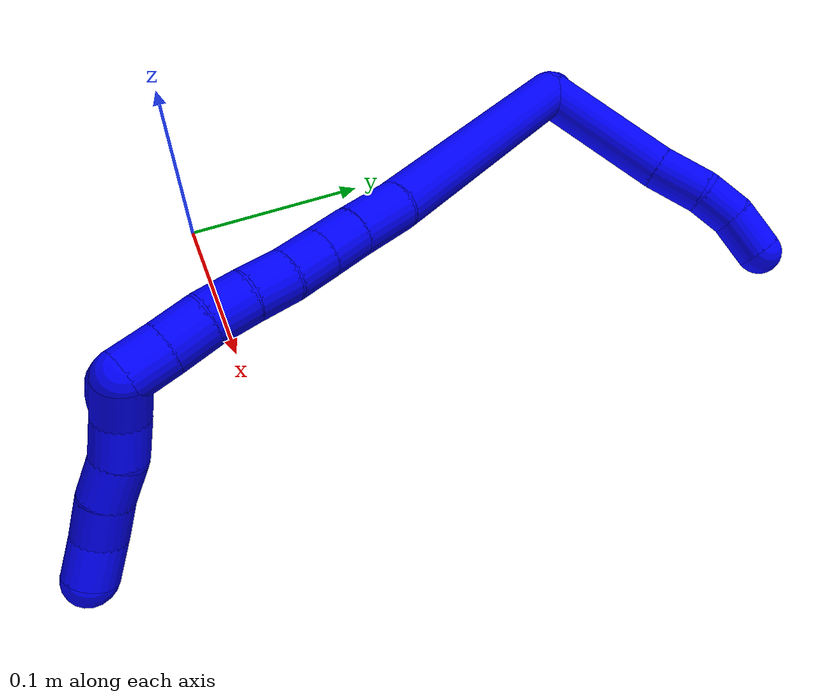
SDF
<sdf version="1.7">
 <world name="default">
  <model name="1">
   <static>0</static>
   <link name="1">
    <collision name="collision-cylinder-e_1_2_8">
     <pose>0.028458 0.024304 0.002439 -1.47079 0.861506 -0.787988</pose>
     <geometry><cylinder><radius>0.0125</radius><length>0.075006</length></cylinder></geometry>
     <surface>
      <friction><ode><mu>1.16</mu><mu2>1.16</mu2><slip1>0</slip1><slip2>0</slip2></ode></friction>
      <contact><ode><kp>1e+06</kp><kd>1</kd><max_vel>0</max_vel><min_depth>0.001</min_depth></ode></contact>
     </surface>
    </collision>
    <visual name="visual-cylinder-e_1_2_8">
     <pose>0.028458 0.024304 0.002439 -1.47079 0.861506 -0.787988</pose>
     <geometry><cylinder><radius>0.0125</radius><length>0.075006</length></cylinder></geometry>
     <material><ambient>0 0 1 1</ambient></material>
    </visual>
    <collision name="collision-cylinder-e_2_8_9">
     <pose>0.067397 0.05813 0.007299 -1.32172 0.817628 -0.649778</pose>
     <geometry><cylinder><radius>0.0125</radius><length>0.028733</length></cylinder></geometry>
     <surface>
      <friction><ode><mu>1.16</mu><mu2>1.16</mu2><slip1>0</slip1><slip2>0</slip2></ode></friction>
      <contact><ode><kp>1e+06</kp><kd>1</kd><max_vel>0</max_vel><min_depth>0.001</min_depth></ode></contact>
     </surface>
    </collision>
    <visual name="visual-cylinder-e_2_8_9">
     <pose>0.067397 0.05813 0.007299 -1.32172 0.817628 -0.649778</pose>
     <geometry><cylinder><radius>0.0125</radius><length>0.028733</length></cylinder></geometry>
     <material><ambient>0 0 1 1</ambient></material>
    </visual>
    <collision name="collision-cylinder-e_3_9_10">
     <pose>0.085677 0.074943 0.008899 -1.68322 0.815945 -0.901156</pose>
     <geometry><cylinder><radius>0.0125</radius><length>0.021414</length></cylinder></geometry>
     <surface>
      <friction><ode><mu>1.16</mu><mu2>1.16</mu2><slip1>0</slip1><slip2>0</slip2></ode></friction>
      <contact><ode><kp>1e+06</kp><kd>1</kd><max_vel>0</max_vel><min_depth>0.001</min_depth></ode></contact>
     </surface>
    </collision>
    <visual name="visual-cylinder-e_3_9_10">
     <pose>0.085677 0.074943 0.008899 -1.68322 0.815945 -0.901156</pose>
     <geometry><cylinder><radius>0.0125</radius><length>0.021414</length></cylinder></geometry>
     <material><ambient>0 0 1 1</ambient></material>
    </visual>
    <collision name="collision-cylinder-e_4_10_6">
     <pose>0.104417 0.087758 0.006051 -1.92195 1.07731 -1.41521</pose>
     <geometry><cylinder><radius>0.0125</radius><length>0.024847</length></cylinder></geometry>
     <surface>
      <friction><ode><mu>1.16</mu><mu2>1.16</mu2><slip1>0</slip1><slip2>0</slip2></ode></friction>
      <contact><ode><kp>1e+06</kp><kd>1</kd><max_vel>0</max_vel><min_depth>0.001</min_depth></ode></contact>
     </surface>
    </collision>
    <visual name="visual-cylinder-e_4_10_6">
     <pose>0.104417 0.087758 0.006051 -1.92195 1.07731 -1.41521</pose>
     <geometry><cylinder><radius>0.0125</radius><length>0.024847</length></cylinder></geometry>
     <material><ambient>0 0 1 1</ambient></material>
    </visual>
    <collision name="collision-cylinder-e_1_2_11">
     <pose>-0.004842 0.004885 -0.007259 -2.54933 -0.505404 1.40473</pose>
     <geometry><cylinder><radius>0.0125</radius><length>0.02</length></cylinder></geometry>
     <surface>
      <friction><ode><mu>1.16</mu><mu2>1.16</mu2><slip1>0</slip1><slip2>0</slip2></ode></friction>
      <contact><ode><kp>1e+06</kp><kd>1</kd><max_vel>0</max_vel><min_depth>0.001</min_depth></ode></contact>
     </surface>
    </collision>
    <visual name="visual-cylinder-e_1_2_11">
     <pose>-0.004842 0.004885 -0.007259 -2.54933 -0.505404 1.40473</pose>
     <geometry><cylinder><radius>0.0125</radius><length>0.02</length></cylinder></geometry>
     <material><ambient>0 0 1 1</ambient></material>
    </visual>
    <collision name="collision-cylinder-e_2_11_12">
     <pose>-0.014441 0.015301 -0.021357 -2.46135 -0.495861 1.24188</pose>
     <geometry><cylinder><radius>0.0125</radius><length>0.02</length></cylinder></geometry>
     <surface>
      <friction><ode><mu>1.16</mu><mu2>1.16</mu2><slip1>0</slip1><slip2>0</slip2></ode></friction>
      <contact><ode><kp>1e+06</kp><kd>1</kd><max_vel>0</max_vel><min_depth>0.001</min_depth></ode></contact>
     </surface>
    </collision>
    <visual name="visual-cylinder-e_2_11_12">
     <pose>-0.014441 0.015301 -0.021357 -2.46135 -0.495861 1.24188</pose>
     <geometry><cylinder><radius>0.0125</radius><length>0.02</length></cylinder></geometry>
     <material><ambient>0 0 1 1</ambient></material>
    </visual>
    <collision name="collision-cylinder-e_3_12_13">
     <pose>-0.024557 0.026415 -0.034531 -2.41946 -0.565481 1.31155</pose>
     <geometry><cylinder><radius>0.0125</radius><length>0.02</length></cylinder></geometry>
     <surface>
      <friction><ode><mu>1.16</mu><mu2>1.16</mu2><slip1>0</slip1><slip2>0</slip2></ode></friction>
      <contact><ode><kp>1e+06</kp><kd>1</kd><max_vel>0</max_vel><min_depth>0.001</min_depth></ode></contact>
     </surface>
    </collision>
    <visual name="visual-cylinder-e_3_12_13">
     <pose>-0.024557 0.026415 -0.034531 -2.41946 -0.565481 1.31155</pose>
     <geometry><cylinder><radius>0.0125</radius><length>0.02</length></cylinder></geometry>
     <material><ambient>0 0 1 1</ambient></material>
    </visual>
    <collision name="collision-cylinder-e_4_13_14">
     <pose>-0.035217 0.037587 -0.047241 -2.42149 -0.558747 1.30231</pose>
     <geometry><cylinder><radius>0.0125</radius><length>0.02</length></cylinder></geometry>
     <surface>
      <friction><ode><mu>1.16</mu><mu2>1.16</mu2><slip1>0</slip1><slip2>0</slip2></ode></friction>
      <contact><ode><kp>1e+06</kp><kd>1</kd><max_vel>0</max_vel><min_depth>0.001</min_depth></ode></contact>
     </surface>
    </collision>
    <visual name="visual-cylinder-e_4_13_14">
     <pose>-0.035217 0.037587 -0.047241 -2.42149 -0.558747 1.30231</pose>
     <geometry><cylinder><radius>0.0125</radius><length>0.02</length></cylinder></geometry>
     <material><ambient>0 0 1 1</ambient></material>
    </visual>
    <collision name="collision-cylinder-e_5_14_5">
     <pose>-0.046979 0.047557 -0.059866 -2.53062 -0.70247 1.72033</pose>
     <geometry><cylinder><radius>0.0125</radius><length>0.02</length></cylinder></geometry>
     <surface>
      <friction><ode><mu>1.16</mu><mu2>1.16</mu2><slip1>0</slip1><slip2>0</slip2></ode></friction>
      <contact><ode><kp>1e+06</kp><kd>1</kd><max_vel>0</max_vel><min_depth>0.001</min_depth></ode></contact>
     </surface>
    </collision>
    <visual name="visual-cylinder-e_5_14_5">
     <pose>-0.046979 0.047557 -0.059866 -2.53062 -0.70247 1.72033</pose>
     <geometry><cylinder><radius>0.0125</radius><length>0.02</length></cylinder></geometry>
     <material><ambient>0 0 1 1</ambient></material>
    </visual>
    <collision name="collision-cylinder-e_1_2_15">
     <pose>0.041423 -0.060941 0.011304 1.38739 0.58915 0.494284</pose>
     <geometry><cylinder><radius>0.0125</radius><length>0.149096</length></cylinder></geometry>
     <surface>
      <friction><ode><mu>1.16</mu><mu2>1.16</mu2><slip1>0</slip1><slip2>0</slip2></ode></friction>
      <contact><ode><kp>1e+06</kp><kd>1</kd><max_vel>0</max_vel><min_depth>0.001</min_depth></ode></contact>
     </surface>
    </collision>
    <visual name="visual-cylinder-e_1_2_15">
     <pose>0.041423 -0.060941 0.011304 1.38739 0.58915 0.494284</pose>
     <geometry><cylinder><radius>0.0125</radius><length>0.149096</length></cylinder></geometry>
     <material><ambient>0 0 1 1</ambient></material>
    </visual>
    <collision name="collision-cylinder-e_2_15_16">
     <pose>0.089953 -0.134908 0.023692 1.48777 0.497966 0.459687</pose>
     <geometry><cylinder><radius>0.0125</radius><length>0.029757</length></cylinder></geometry>
     <surface>
      <friction><ode><mu>1.16</mu><mu2>1.16</mu2><slip1>0</slip1><slip2>0</slip2></ode></friction>
      <contact><ode><kp>1e+06</kp><kd>1</kd><max_vel>0</max_vel><min_depth>0.001</min_depth></ode></contact>
     </surface>
    </collision>
    <visual name="visual-cylinder-e_2_15_16">
     <pose>0.089953 -0.134908 0.023692 1.48777 0.497966 0.459687</pose>
     <geometry><cylinder><radius>0.0125</radius><length>0.029757</length></cylinder></geometry>
     <material><ambient>0 0 1 1</ambient></material>
    </visual>
    <collision name="collision-cylinder-e_3_16_17">
     <pose>0.10217 -0.15677 0.025221 1.52041 0.523887 0.499214</pose>
     <geometry><cylinder><radius>0.0125</radius><length>0.020432</length></cylinder></geometry>
     <surface>
      <friction><ode><mu>1.16</mu><mu2>1.16</mu2><slip1>0</slip1><slip2>0</slip2></ode></friction>
      <contact><ode><kp>1e+06</kp><kd>1</kd><max_vel>0</max_vel><min_depth>0.001</min_depth></ode></contact>
     </surface>
    </collision>
    <visual name="visual-cylinder-e_3_16_17">
     <pose>0.10217 -0.15677 0.025221 1.52041 0.523887 0.499214</pose>
     <geometry><cylinder><radius>0.0125</radius><length>0.020432</length></cylinder></geometry>
     <material><ambient>0 0 1 1</ambient></material>
    </visual>
    <collision name="collision-cylinder-e_4_17_18">
     <pose>0.112296 -0.174375 0.026272 1.50189 0.518498 0.485331</pose>
     <geometry><cylinder><radius>0.0125</radius><length>0.020244</length></cylinder></geometry>
     <surface>
      <friction><ode><mu>1.16</mu><mu2>1.16</mu2><slip1>0</slip1><slip2>0</slip2></ode></friction>
      <contact><ode><kp>1e+06</kp><kd>1</kd><max_vel>0</max_vel><min_depth>0.001</min_depth></ode></contact>
     </surface>
    </collision>
    <visual name="visual-cylinder-e_4_17_18">
     <pose>0.112296 -0.174375 0.026272 1.50189 0.518498 0.485331</pose>
     <geometry><cylinder><radius>0.0125</radius><length>0.020244</length></cylinder></geometry>
     <material><ambient>0 0 1 1</ambient></material>
    </visual>
    <collision name="collision-cylinder-e_5_18_19">
     <pose>0.121441 -0.192415 0.027072 1.54985 0.41888 0.41044</pose>
     <geometry><cylinder><radius>0.0125</radius><length>0.020299</length></cylinder></geometry>
     <surface>
      <friction><ode><mu>1.16</mu><mu2>1.16</mu2><slip1>0</slip1><slip2>0</slip2></ode></friction>
      <contact><ode><kp>1e+06</kp><kd>1</kd><max_vel>0</max_vel><min_depth>0.001</min_depth></ode></contact>
     </surface>
    </collision>
    <visual name="visual-cylinder-e_5_18_19">
     <pose>0.121441 -0.192415 0.027072 1.54985 0.41888 0.41044</pose>
     <geometry><cylinder><radius>0.0125</radius><length>0.020299</length></cylinder></geometry>
     <material><ambient>0 0 1 1</ambient></material>
    </visual>
    <collision name="collision-cylinder-e_6_19_20">
     <pose>0.129607 -0.21087 0.026366 1.66853 0.412491 0.453535</pose>
     <geometry><cylinder><radius>0.0125</radius><length>0.020147</length></cylinder></geometry>
     <surface>
      <friction><ode><mu>1.16</mu><mu2>1.16</mu2><slip1>0</slip1><slip2>0</slip2></ode></friction>
      <contact><ode><kp>1e+06</kp><kd>1</kd><max_vel>0</max_vel><min_depth>0.001</min_depth></ode></contact>
     </surface>
    </collision>
    <visual name="visual-cylinder-e_6_19_20">
     <pose>0.129607 -0.21087 0.026366 1.66853 0.412491 0.453535</pose>
     <geometry><cylinder><radius>0.0125</radius><length>0.020147</length></cylinder></geometry>
     <material><ambient>0 0 1 1</ambient></material>
    </visual>
    <collision name="collision-cylinder-e_7_20_21">
     <pose>0.1383 -0.228734 0.023683 1.77326 0.483682 0.587401</pose>
     <geometry><cylinder><radius>0.0125</radius><length>0.020018</length></cylinder></geometry>
     <surface>
      <friction><ode><mu>1.16</mu><mu2>1.16</mu2><slip1>0</slip1><slip2>0</slip2></ode></friction>
      <contact><ode><kp>1e+06</kp><kd>1</kd><max_vel>0</max_vel><min_depth>0.001</min_depth></ode></contact>
     </surface>
    </collision>
    <visual name="visual-cylinder-e_7_20_21">
     <pose>0.1383 -0.228734 0.023683 1.77326 0.483682 0.587401</pose>
     <geometry><cylinder><radius>0.0125</radius><length>0.020018</length></cylinder></geometry>
     <material><ambient>0 0 1 1</ambient></material>
    </visual>
    <collision name="collision-cylinder-e_8_21_1">
     <pose>0.147543 -0.246217 0.020665 1.71034 0.47649 0.544815</pose>
     <geometry><cylinder><radius>0.0125</radius><length>0.020007</length></cylinder></geometry>
     <surface>
      <friction><ode><mu>1.16</mu><mu2>1.16</mu2><slip1>0</slip1><slip2>0</slip2></ode></friction>
      <contact><ode><kp>1e+06</kp><kd>1</kd><max_vel>0</max_vel><min_depth>0.001</min_depth></ode></contact>
     </surface>
    </collision>
    <visual name="visual-cylinder-e_8_21_1">
     <pose>0.147543 -0.246217 0.020665 1.71034 0.47649 0.544815</pose>
     <geometry><cylinder><radius>0.0125</radius><length>0.020007</length></cylinder></geometry>
     <material><ambient>0 0 1 1</ambient></material>
    </visual>
    <collision name="collision-cylinder-e_1_1_22">
     <pose>0.148992 -0.255071 0.009934 3.13623 -0.319368 -3.10829</pose>
     <geometry><cylinder><radius>0.0125</radius><length>0.02</length></cylinder></geometry>
     <surface>
      <friction><ode><mu>1.16</mu><mu2>1.16</mu2><slip1>0</slip1><slip2>0</slip2></ode></friction>
      <contact><ode><kp>1e+06</kp><kd>1</kd><max_vel>0</max_vel><min_depth>0.001</min_depth></ode></contact>
     </surface>
    </collision>
    <visual name="visual-cylinder-e_1_1_22">
     <pose>0.148992 -0.255071 0.009934 3.13623 -0.319368 -3.10829</pose>
     <geometry><cylinder><radius>0.0125</radius><length>0.02</length></cylinder></geometry>
     <material><ambient>0 0 1 1</ambient></material>
    </visual>
    <collision name="collision-cylinder-e_2_22_23">
     <pose>0.14347 -0.254562 -0.009256 -3.08399 -0.240563 2.67358</pose>
     <geometry><cylinder><radius>0.0125</radius><length>0.02</length></cylinder></geometry>
     <surface>
      <friction><ode><mu>1.16</mu><mu2>1.16</mu2><slip1>0</slip1><slip2>0</slip2></ode></friction>
      <contact><ode><kp>1e+06</kp><kd>1</kd><max_vel>0</max_vel><min_depth>0.001</min_depth></ode></contact>
     </surface>
    </collision>
    <visual name="visual-cylinder-e_2_22_23">
     <pose>0.14347 -0.254562 -0.009256 -3.08399 -0.240563 2.67358</pose>
     <geometry><cylinder><radius>0.0125</radius><length>0.02</length></cylinder></geometry>
     <material><ambient>0 0 1 1</ambient></material>
    </visual>
    <collision name="collision-cylinder-e_3_23_24">
     <pose>0.139015 -0.253176 -0.0287 -3.05695 -0.208754 2.37332</pose>
     <geometry><cylinder><radius>0.0125</radius><length>0.02</length></cylinder></geometry>
     <surface>
      <friction><ode><mu>1.16</mu><mu2>1.16</mu2><slip1>0</slip1><slip2>0</slip2></ode></friction>
      <contact><ode><kp>1e+06</kp><kd>1</kd><max_vel>0</max_vel><min_depth>0.001</min_depth></ode></contact>
     </surface>
    </collision>
    <visual name="visual-cylinder-e_3_23_24">
     <pose>0.139015 -0.253176 -0.0287 -3.05695 -0.208754 2.37332</pose>
     <geometry><cylinder><radius>0.0125</radius><length>0.02</length></cylinder></geometry>
     <material><ambient>0 0 1 1</ambient></material>
    </visual>
    <collision name="collision-cylinder-e_4_24_25">
     <pose>0.134628 -0.250331 -0.047964 -2.9326 -0.23358 1.68269</pose>
     <geometry><cylinder><radius>0.0125</radius><length>0.02</length></cylinder></geometry>
     <surface>
      <friction><ode><mu>1.16</mu><mu2>1.16</mu2><slip1>0</slip1><slip2>0</slip2></ode></friction>
      <contact><ode><kp>1e+06</kp><kd>1</kd><max_vel>0</max_vel><min_depth>0.001</min_depth></ode></contact>
     </surface>
    </collision>
    <visual name="visual-cylinder-e_4_24_25">
     <pose>0.134628 -0.250331 -0.047964 -2.9326 -0.23358 1.68269</pose>
     <geometry><cylinder><radius>0.0125</radius><length>0.02</length></cylinder></geometry>
     <material><ambient>0 0 1 1</ambient></material>
    </visual>
    <collision name="collision-cylinder-e_5_25_4">
     <pose>0.131906 -0.246846 -0.067364 -2.99431 -0.040746 0.538925</pose>
     <geometry><cylinder><radius>0.0125</radius><length>0.02</length></cylinder></geometry>
     <surface>
      <friction><ode><mu>1.16</mu><mu2>1.16</mu2><slip1>0</slip1><slip2>0</slip2></ode></friction>
      <contact><ode><kp>1e+06</kp><kd>1</kd><max_vel>0</max_vel><min_depth>0.001</min_depth></ode></contact>
     </surface>
    </collision>
    <visual name="visual-cylinder-e_5_25_4">
     <pose>0.131906 -0.246846 -0.067364 -2.99431 -0.040746 0.538925</pose>
     <geometry><cylinder><radius>0.0125</radius><length>0.02</length></cylinder></geometry>
     <material><ambient>0 0 1 1</ambient></material>
    </visual>
    <collision name="collision-cylinder-e_1_1_26">
     <pose>0.156499 -0.255158 0.010434 3.12622 0.452001 3.07475</pose>
     <geometry><cylinder><radius>0.0125</radius><length>0.02</length></cylinder></geometry>
     <surface>
      <friction><ode><mu>1.16</mu><mu2>1.16</mu2><slip1>0</slip1><slip2>0</slip2></ode></friction>
      <contact><ode><kp>1e+06</kp><kd>1</kd><max_vel>0</max_vel><min_depth>0.001</min_depth></ode></contact>
     </surface>
    </collision>
    <visual name="visual-cylinder-e_1_1_26">
     <pose>0.156499 -0.255158 0.010434 3.12622 0.452001 3.07475</pose>
     <geometry><cylinder><radius>0.0125</radius><length>0.02</length></cylinder></geometry>
     <material><ambient>0 0 1 1</ambient></material>
    </visual>
    <collision name="collision-cylinder-e_2_26_27">
     <pose>0.166991 -0.255999 -0.006435 3.05256 0.659137 2.88259</pose>
     <geometry><cylinder><radius>0.0125</radius><length>0.02</length></cylinder></geometry>
     <surface>
      <friction><ode><mu>1.16</mu><mu2>1.16</mu2><slip1>0</slip1><slip2>0</slip2></ode></friction>
      <contact><ode><kp>1e+06</kp><kd>1</kd><max_vel>0</max_vel><min_depth>0.001</min_depth></ode></contact>
     </surface>
    </collision>
    <visual name="visual-cylinder-e_2_26_27">
     <pose>0.166991 -0.255999 -0.006435 3.05256 0.659137 2.88259</pose>
     <geometry><cylinder><radius>0.0125</radius><length>0.02</length></cylinder></geometry>
     <material><ambient>0 0 1 1</ambient></material>
    </visual>
    <collision name="collision-cylinder-e_3_27_28">
     <pose>0.178471 -0.259549 -0.022259 2.79773 0.56523 2.06374</pose>
     <geometry><cylinder><radius>0.0125</radius><length>0.02</length></cylinder></geometry>
     <surface>
      <friction><ode><mu>1.16</mu><mu2>1.16</mu2><slip1>0</slip1><slip2>0</slip2></ode></friction>
      <contact><ode><kp>1e+06</kp><kd>1</kd><max_vel>0</max_vel><min_depth>0.001</min_depth></ode></contact>
     </surface>
    </collision>
    <visual name="visual-cylinder-e_3_27_28">
     <pose>0.178471 -0.259549 -0.022259 2.79773 0.56523 2.06374</pose>
     <geometry><cylinder><radius>0.0125</radius><length>0.02</length></cylinder></geometry>
     <material><ambient>0 0 1 1</ambient></material>
    </visual>
    <collision name="collision-cylinder-e_4_28_29">
     <pose>0.189469 -0.264049 -0.038299 2.94004 0.599402 2.50908</pose>
     <geometry><cylinder><radius>0.0125</radius><length>0.02</length></cylinder></geometry>
     <surface>
      <friction><ode><mu>1.16</mu><mu2>1.16</mu2><slip1>0</slip1><slip2>0</slip2></ode></friction>
      <contact><ode><kp>1e+06</kp><kd>1</kd><max_vel>0</max_vel><min_depth>0.001</min_depth></ode></contact>
     </surface>
    </collision>
    <visual name="visual-cylinder-e_4_28_29">
     <pose>0.189469 -0.264049 -0.038299 2.94004 0.599402 2.50908</pose>
     <geometry><cylinder><radius>0.0125</radius><length>0.02</length></cylinder></geometry>
     <material><ambient>0 0 1 1</ambient></material>
    </visual>
    <collision name="collision-cylinder-e_5_29_3">
     <pose>0.202034 -0.268089 -0.053198 2.80445 0.764738 2.34094</pose>
     <geometry><cylinder><radius>0.0125</radius><length>0.02</length></cylinder></geometry>
     <surface>
      <friction><ode><mu>1.16</mu><mu2>1.16</mu2><slip1>0</slip1><slip2>0</slip2></ode></friction>
      <contact><ode><kp>1e+06</kp><kd>1</kd><max_vel>0</max_vel><min_depth>0.001</min_depth></ode></contact>
     </surface>
    </collision>
    <visual name="visual-cylinder-e_5_29_3">
     <pose>0.202034 -0.268089 -0.053198 2.80445 0.764738 2.34094</pose>
     <geometry><cylinder><radius>0.0125</radius><length>0.02</length></cylinder></geometry>
     <material><ambient>0 0 1 1</ambient></material>
    </visual>
    <collision name="collision-sphere-3">
     <pose>0.208958 -0.270475 -0.060007 0 -0 0</pose>
     <geometry><sphere><radius>0.0125</radius></sphere></geometry>
     <surface>
      <friction><ode><mu>1.16</mu><mu2>1.16</mu2><slip1>0</slip1><slip2>0</slip2></ode></friction>
      <contact><ode><kp>1e+06</kp><kd>1</kd><max_vel>0</max_vel><min_depth>0.001</min_depth></ode></contact>
     </surface>
    </collision>
    <visual name="visual-sphere-3">
     <pose>0.208958 -0.270475 -0.060007 0 -0 0</pose>
     <geometry><sphere><radius>0.0125</radius></sphere></geometry>
     <material><ambient>0 0 1 1</ambient></material>
    </visual>
    <collision name="collision-sphere-29">
     <pose>0.195111 -0.265702 -0.046388 0 -0 0</pose>
     <geometry><sphere><radius>0.0125</radius></sphere></geometry>
     <surface>
      <friction><ode><mu>1.16</mu><mu2>1.16</mu2><slip1>0</slip1><slip2>0</slip2></ode></friction>
      <contact><ode><kp>1e+06</kp><kd>1</kd><max_vel>0</max_vel><min_depth>0.001</min_depth></ode></contact>
     </surface>
    </collision>
    <visual name="visual-sphere-29">
     <pose>0.195111 -0.265702 -0.046388 0 -0 0</pose>
     <geometry><sphere><radius>0.0125</radius></sphere></geometry>
     <material><ambient>0 0 1 1</ambient></material>
    </visual>
    <collision name="collision-sphere-28">
     <pose>0.183828 -0.262396 -0.030209 0 -0 0</pose>
     <geometry><sphere><radius>0.0125</radius></sphere></geometry>
     <surface>
      <friction><ode><mu>1.16</mu><mu2>1.16</mu2><slip1>0</slip1><slip2>0</slip2></ode></friction>
      <contact><ode><kp>1e+06</kp><kd>1</kd><max_vel>0</max_vel><min_depth>0.001</min_depth></ode></contact>
     </surface>
    </collision>
    <visual name="visual-sphere-28">
     <pose>0.183828 -0.262396 -0.030209 0 -0 0</pose>
     <geometry><sphere><radius>0.0125</radius></sphere></geometry>
     <material><ambient>0 0 1 1</ambient></material>
    </visual>
    <collision name="collision-sphere-27">
     <pose>0.173115 -0.256702 -0.014309 0 -0 0</pose>
     <geometry><sphere><radius>0.0125</radius></sphere></geometry>
     <surface>
      <friction><ode><mu>1.16</mu><mu2>1.16</mu2><slip1>0</slip1><slip2>0</slip2></ode></friction>
      <contact><ode><kp>1e+06</kp><kd>1</kd><max_vel>0</max_vel><min_depth>0.001</min_depth></ode></contact>
     </surface>
    </collision>
    <visual name="visual-sphere-27">
     <pose>0.173115 -0.256702 -0.014309 0 -0 0</pose>
     <geometry><sphere><radius>0.0125</radius></sphere></geometry>
     <material><ambient>0 0 1 1</ambient></material>
    </visual>
    <collision name="collision-sphere-26">
     <pose>0.160867 -0.255296 0.001439 0 -0 0</pose>
     <geometry><sphere><radius>0.0125</radius></sphere></geometry>
     <surface>
      <friction><ode><mu>1.16</mu><mu2>1.16</mu2><slip1>0</slip1><slip2>0</slip2></ode></friction>
      <contact><ode><kp>1e+06</kp><kd>1</kd><max_vel>0</max_vel><min_depth>0.001</min_depth></ode></contact>
     </surface>
    </collision>
    <visual name="visual-sphere-26">
     <pose>0.160867 -0.255296 0.001439 0 -0 0</pose>
     <geometry><sphere><radius>0.0125</radius></sphere></geometry>
     <material><ambient>0 0 1 1</ambient></material>
    </visual>
    <collision name="collision-sphere-4">
     <pose>0.131498 -0.24538 -0.077248 0 -0 0</pose>
     <geometry><sphere><radius>0.0125</radius></sphere></geometry>
     <surface>
      <friction><ode><mu>1.16</mu><mu2>1.16</mu2><slip1>0</slip1><slip2>0</slip2></ode></friction>
      <contact><ode><kp>1e+06</kp><kd>1</kd><max_vel>0</max_vel><min_depth>0.001</min_depth></ode></contact>
     </surface>
    </collision>
    <visual name="visual-sphere-4">
     <pose>0.131498 -0.24538 -0.077248 0 -0 0</pose>
     <geometry><sphere><radius>0.0125</radius></sphere></geometry>
     <material><ambient>0 0 1 1</ambient></material>
    </visual>
    <collision name="collision-sphere-25">
     <pose>0.132313 -0.248312 -0.057481 0 -0 0</pose>
     <geometry><sphere><radius>0.0125</radius></sphere></geometry>
     <surface>
      <friction><ode><mu>1.16</mu><mu2>1.16</mu2><slip1>0</slip1><slip2>0</slip2></ode></friction>
      <contact><ode><kp>1e+06</kp><kd>1</kd><max_vel>0</max_vel><min_depth>0.001</min_depth></ode></contact>
     </surface>
    </collision>
    <visual name="visual-sphere-25">
     <pose>0.132313 -0.248312 -0.057481 0 -0 0</pose>
     <geometry><sphere><radius>0.0125</radius></sphere></geometry>
     <material><ambient>0 0 1 1</ambient></material>
    </visual>
    <collision name="collision-sphere-24">
     <pose>0.136942 -0.252349 -0.038447 0 -0 0</pose>
     <geometry><sphere><radius>0.0125</radius></sphere></geometry>
     <surface>
      <friction><ode><mu>1.16</mu><mu2>1.16</mu2><slip1>0</slip1><slip2>0</slip2></ode></friction>
      <contact><ode><kp>1e+06</kp><kd>1</kd><max_vel>0</max_vel><min_depth>0.001</min_depth></ode></contact>
     </surface>
    </collision>
    <visual name="visual-sphere-24">
     <pose>0.136942 -0.252349 -0.038447 0 -0 0</pose>
     <geometry><sphere><radius>0.0125</radius></sphere></geometry>
     <material><ambient>0 0 1 1</ambient></material>
    </visual>
    <collision name="collision-sphere-23">
     <pose>0.141087 -0.254003 -0.018952 0 -0 0</pose>
     <geometry><sphere><radius>0.0125</radius></sphere></geometry>
     <surface>
      <friction><ode><mu>1.16</mu><mu2>1.16</mu2><slip1>0</slip1><slip2>0</slip2></ode></friction>
      <contact><ode><kp>1e+06</kp><kd>1</kd><max_vel>0</max_vel><min_depth>0.001</min_depth></ode></contact>
     </surface>
    </collision>
    <visual name="visual-sphere-23">
     <pose>0.141087 -0.254003 -0.018952 0 -0 0</pose>
     <geometry><sphere><radius>0.0125</radius></sphere></geometry>
     <material><ambient>0 0 1 1</ambient></material>
    </visual>
    <collision name="collision-sphere-22">
     <pose>0.145852 -0.255121 0.00044 0 -0 0</pose>
     <geometry><sphere><radius>0.0125</radius></sphere></geometry>
     <surface>
      <friction><ode><mu>1.16</mu><mu2>1.16</mu2><slip1>0</slip1><slip2>0</slip2></ode></friction>
      <contact><ode><kp>1e+06</kp><kd>1</kd><max_vel>0</max_vel><min_depth>0.001</min_depth></ode></contact>
     </surface>
    </collision>
    <visual name="visual-sphere-22">
     <pose>0.145852 -0.255121 0.00044 0 -0 0</pose>
     <geometry><sphere><radius>0.0125</radius></sphere></geometry>
     <material><ambient>0 0 1 1</ambient></material>
    </visual>
    <collision name="collision-sphere-1">
     <pose>0.152131 -0.25502 0.019429 0 -0 0</pose>
     <geometry><sphere><radius>0.0125</radius></sphere></geometry>
     <surface>
      <friction><ode><mu>1.16</mu><mu2>1.16</mu2><slip1>0</slip1><slip2>0</slip2></ode></friction>
      <contact><ode><kp>1e+06</kp><kd>1</kd><max_vel>0</max_vel><min_depth>0.001</min_depth></ode></contact>
     </surface>
    </collision>
    <visual name="visual-sphere-1">
     <pose>0.152131 -0.25502 0.019429 0 -0 0</pose>
     <geometry><sphere><radius>0.0125</radius></sphere></geometry>
     <material><ambient>0 0 1 1</ambient></material>
    </visual>
    <collision name="collision-sphere-21">
     <pose>0.142955 -0.237414 0.021901 0 -0 0</pose>
     <geometry><sphere><radius>0.0125</radius></sphere></geometry>
     <surface>
      <friction><ode><mu>1.16</mu><mu2>1.16</mu2><slip1>0</slip1><slip2>0</slip2></ode></friction>
      <contact><ode><kp>1e+06</kp><kd>1</kd><max_vel>0</max_vel><min_depth>0.001</min_depth></ode></contact>
     </surface>
    </collision>
    <visual name="visual-sphere-21">
     <pose>0.142955 -0.237414 0.021901 0 -0 0</pose>
     <geometry><sphere><radius>0.0125</radius></sphere></geometry>
     <material><ambient>0 0 1 1</ambient></material>
    </visual>
    <collision name="collision-sphere-11">
     <pose>-0.009683 0.009769 -0.014519 0 -0 0</pose>
     <geometry><sphere><radius>0.0125</radius></sphere></geometry>
     <surface>
      <friction><ode><mu>1.16</mu><mu2>1.16</mu2><slip1>0</slip1><slip2>0</slip2></ode></friction>
      <contact><ode><kp>1e+06</kp><kd>1</kd><max_vel>0</max_vel><min_depth>0.001</min_depth></ode></contact>
     </surface>
    </collision>
    <visual name="visual-sphere-11">
     <pose>-0.009683 0.009769 -0.014519 0 -0 0</pose>
     <geometry><sphere><radius>0.0125</radius></sphere></geometry>
     <material><ambient>0 0 1 1</ambient></material>
    </visual>
    <collision name="collision-sphere-6">
     <pose>0.115358 0.093284 0.004027 0 -0 0</pose>
     <geometry><sphere><radius>0.0125</radius></sphere></geometry>
     <surface>
      <friction><ode><mu>1.16</mu><mu2>1.16</mu2><slip1>0</slip1><slip2>0</slip2></ode></friction>
      <contact><ode><kp>1e+06</kp><kd>1</kd><max_vel>0</max_vel><min_depth>0.001</min_depth></ode></contact>
     </surface>
    </collision>
    <visual name="visual-sphere-6">
     <pose>0.115358 0.093284 0.004027 0 -0 0</pose>
     <geometry><sphere><radius>0.0125</radius></sphere></geometry>
     <material><ambient>0 0 1 1</ambient></material>
    </visual>
    <collision name="collision-sphere-10">
     <pose>0.093475 0.082233 0.008075 0 -0 0</pose>
     <geometry><sphere><radius>0.0125</radius></sphere></geometry>
     <surface>
      <friction><ode><mu>1.16</mu><mu2>1.16</mu2><slip1>0</slip1><slip2>0</slip2></ode></friction>
      <contact><ode><kp>1e+06</kp><kd>1</kd><max_vel>0</max_vel><min_depth>0.001</min_depth></ode></contact>
     </surface>
    </collision>
    <visual name="visual-sphere-10">
     <pose>0.093475 0.082233 0.008075 0 -0 0</pose>
     <geometry><sphere><radius>0.0125</radius></sphere></geometry>
     <material><ambient>0 0 1 1</ambient></material>
    </visual>
    <collision name="collision-sphere-9">
     <pose>0.077878 0.067653 0.009722 0 -0 0</pose>
     <geometry><sphere><radius>0.0125</radius></sphere></geometry>
     <surface>
      <friction><ode><mu>1.16</mu><mu2>1.16</mu2><slip1>0</slip1><slip2>0</slip2></ode></friction>
      <contact><ode><kp>1e+06</kp><kd>1</kd><max_vel>0</max_vel><min_depth>0.001</min_depth></ode></contact>
     </surface>
    </collision>
    <visual name="visual-sphere-9">
     <pose>0.077878 0.067653 0.009722 0 -0 0</pose>
     <geometry><sphere><radius>0.0125</radius></sphere></geometry>
     <material><ambient>0 0 1 1</ambient></material>
    </visual>
    <collision name="collision-sphere-2">
     <geometry><sphere><radius>0.0125</radius></sphere></geometry>
     <surface>
      <friction><ode><mu>1.16</mu><mu2>1.16</mu2><slip1>0</slip1><slip2>0</slip2></ode></friction>
      <contact><ode><kp>1e+06</kp><kd>1</kd><max_vel>0</max_vel><min_depth>0.001</min_depth></ode></contact>
     </surface>
    </collision>
    <visual name="visual-sphere-2">
     <geometry><sphere><radius>0.0125</radius></sphere></geometry>
     <material><ambient>0 0 1 1</ambient></material>
    </visual>
    <collision name="collision-sphere-19">
     <pose>0.125569 -0.201685 0.027266 0 -0 0</pose>
     <geometry><sphere><radius>0.0125</radius></sphere></geometry>
     <surface>
      <friction><ode><mu>1.16</mu><mu2>1.16</mu2><slip1>0</slip1><slip2>0</slip2></ode></friction>
      <contact><ode><kp>1e+06</kp><kd>1</kd><max_vel>0</max_vel><min_depth>0.001</min_depth></ode></contact>
     </surface>
    </collision>
    <visual name="visual-sphere-19">
     <pose>0.125569 -0.201685 0.027266 0 -0 0</pose>
     <geometry><sphere><radius>0.0125</radius></sphere></geometry>
     <material><ambient>0 0 1 1</ambient></material>
    </visual>
    <collision name="collision-sphere-8">
     <pose>0.056917 0.048607 0.004877 0 -0 0</pose>
     <geometry><sphere><radius>0.0125</radius></sphere></geometry>
     <surface>
      <friction><ode><mu>1.16</mu><mu2>1.16</mu2><slip1>0</slip1><slip2>0</slip2></ode></friction>
      <contact><ode><kp>1e+06</kp><kd>1</kd><max_vel>0</max_vel><min_depth>0.001</min_depth></ode></contact>
     </surface>
    </collision>
    <visual name="visual-sphere-8">
     <pose>0.056917 0.048607 0.004877 0 -0 0</pose>
     <geometry><sphere><radius>0.0125</radius></sphere></geometry>
     <material><ambient>0 0 1 1</ambient></material>
    </visual>
    <collision name="collision-sphere-12">
     <pose>-0.019199 0.020834 -0.028195 0 -0 0</pose>
     <geometry><sphere><radius>0.0125</radius></sphere></geometry>
     <surface>
      <friction><ode><mu>1.16</mu><mu2>1.16</mu2><slip1>0</slip1><slip2>0</slip2></ode></friction>
      <contact><ode><kp>1e+06</kp><kd>1</kd><max_vel>0</max_vel><min_depth>0.001</min_depth></ode></contact>
     </surface>
    </collision>
    <visual name="visual-sphere-12">
     <pose>-0.019199 0.020834 -0.028195 0 -0 0</pose>
     <geometry><sphere><radius>0.0125</radius></sphere></geometry>
     <material><ambient>0 0 1 1</ambient></material>
    </visual>
    <collision name="collision-sphere-13">
     <pose>-0.029915 0.031995 -0.040866 0 -0 0</pose>
     <geometry><sphere><radius>0.0125</radius></sphere></geometry>
     <surface>
      <friction><ode><mu>1.16</mu><mu2>1.16</mu2><slip1>0</slip1><slip2>0</slip2></ode></friction>
      <contact><ode><kp>1e+06</kp><kd>1</kd><max_vel>0</max_vel><min_depth>0.001</min_depth></ode></contact>
     </surface>
    </collision>
    <visual name="visual-sphere-13">
     <pose>-0.029915 0.031995 -0.040866 0 -0 0</pose>
     <geometry><sphere><radius>0.0125</radius></sphere></geometry>
     <material><ambient>0 0 1 1</ambient></material>
    </visual>
    <collision name="collision-sphere-14">
     <pose>-0.040518 0.043179 -0.053615 0 -0 0</pose>
     <geometry><sphere><radius>0.0125</radius></sphere></geometry>
     <surface>
      <friction><ode><mu>1.16</mu><mu2>1.16</mu2><slip1>0</slip1><slip2>0</slip2></ode></friction>
      <contact><ode><kp>1e+06</kp><kd>1</kd><max_vel>0</max_vel><min_depth>0.001</min_depth></ode></contact>
     </surface>
    </collision>
    <visual name="visual-sphere-14">
     <pose>-0.040518 0.043179 -0.053615 0 -0 0</pose>
     <geometry><sphere><radius>0.0125</radius></sphere></geometry>
     <material><ambient>0 0 1 1</ambient></material>
    </visual>
    <collision name="collision-sphere-5">
     <pose>-0.05344 0.051936 -0.066118 0 -0 0</pose>
     <geometry><sphere><radius>0.0125</radius></sphere></geometry>
     <surface>
      <friction><ode><mu>1.16</mu><mu2>1.16</mu2><slip1>0</slip1><slip2>0</slip2></ode></friction>
      <contact><ode><kp>1e+06</kp><kd>1</kd><max_vel>0</max_vel><min_depth>0.001</min_depth></ode></contact>
     </surface>
    </collision>
    <visual name="visual-sphere-5">
     <pose>-0.05344 0.051936 -0.066118 0 -0 0</pose>
     <geometry><sphere><radius>0.0125</radius></sphere></geometry>
     <material><ambient>0 0 1 1</ambient></material>
    </visual>
    <collision name="collision-sphere-15">
     <pose>0.082846 -0.121881 0.022608 0 -0 0</pose>
     <geometry><sphere><radius>0.0125</radius></sphere></geometry>
     <surface>
      <friction><ode><mu>1.16</mu><mu2>1.16</mu2><slip1>0</slip1><slip2>0</slip2></ode></friction>
      <contact><ode><kp>1e+06</kp><kd>1</kd><max_vel>0</max_vel><min_depth>0.001</min_depth></ode></contact>
     </surface>
    </collision>
    <visual name="visual-sphere-15">
     <pose>0.082846 -0.121881 0.022608 0 -0 0</pose>
     <geometry><sphere><radius>0.0125</radius></sphere></geometry>
     <material><ambient>0 0 1 1</ambient></material>
    </visual>
    <collision name="collision-sphere-16">
     <pose>0.097059 -0.147935 0.024776 0 -0 0</pose>
     <geometry><sphere><radius>0.0125</radius></sphere></geometry>
     <surface>
      <friction><ode><mu>1.16</mu><mu2>1.16</mu2><slip1>0</slip1><slip2>0</slip2></ode></friction>
      <contact><ode><kp>1e+06</kp><kd>1</kd><max_vel>0</max_vel><min_depth>0.001</min_depth></ode></contact>
     </surface>
    </collision>
    <visual name="visual-sphere-16">
     <pose>0.097059 -0.147935 0.024776 0 -0 0</pose>
     <geometry><sphere><radius>0.0125</radius></sphere></geometry>
     <material><ambient>0 0 1 1</ambient></material>
    </visual>
    <collision name="collision-sphere-17">
     <pose>0.10728 -0.165604 0.025667 0 -0 0</pose>
     <geometry><sphere><radius>0.0125</radius></sphere></geometry>
     <surface>
      <friction><ode><mu>1.16</mu><mu2>1.16</mu2><slip1>0</slip1><slip2>0</slip2></ode></friction>
      <contact><ode><kp>1e+06</kp><kd>1</kd><max_vel>0</max_vel><min_depth>0.001</min_depth></ode></contact>
     </surface>
    </collision>
    <visual name="visual-sphere-17">
     <pose>0.10728 -0.165604 0.025667 0 -0 0</pose>
     <geometry><sphere><radius>0.0125</radius></sphere></geometry>
     <material><ambient>0 0 1 1</ambient></material>
    </visual>
    <collision name="collision-sphere-18">
     <pose>0.117313 -0.183145 0.026878 0 -0 0</pose>
     <geometry><sphere><radius>0.0125</radius></sphere></geometry>
     <surface>
      <friction><ode><mu>1.16</mu><mu2>1.16</mu2><slip1>0</slip1><slip2>0</slip2></ode></friction>
      <contact><ode><kp>1e+06</kp><kd>1</kd><max_vel>0</max_vel><min_depth>0.001</min_depth></ode></contact>
     </surface>
    </collision>
    <visual name="visual-sphere-18">
     <pose>0.117313 -0.183145 0.026878 0 -0 0</pose>
     <geometry><sphere><radius>0.0125</radius></sphere></geometry>
     <material><ambient>0 0 1 1</ambient></material>
    </visual>
    <collision name="collision-sphere-20">
     <pose>0.133646 -0.220054 0.025465 0 -0 0</pose>
     <geometry><sphere><radius>0.0125</radius></sphere></geometry>
     <surface>
      <friction><ode><mu>1.16</mu><mu2>1.16</mu2><slip1>0</slip1><slip2>0</slip2></ode></friction>
      <contact><ode><kp>1e+06</kp><kd>1</kd><max_vel>0</max_vel><min_depth>0.001</min_depth></ode></contact>
     </surface>
    </collision>
    <visual name="visual-sphere-20">
     <pose>0.133646 -0.220054 0.025465 0 -0 0</pose>
     <geometry><sphere><radius>0.0125</radius></sphere></geometry>
     <material><ambient>0 0 1 1</ambient></material>
    </visual>
    <inertial>
     <pose>0.082426 -0.105115 -0.003104 0 -0 0</pose>
     <mass>0.75</mass>
     <inertia><ixx>0.000357</ixx><ixy>0</ixy><ixz>0</ixz><iyy>0.000258</iyy><iyz>0</iyz><izz>-3e-06</izz></inertia>
    </inertial>
   </link>
   <pose>0.037323 0.209343 0.06402 -0.256174 0.322226 -0.117654</pose>
  </model>
 </world>
</sdf>
